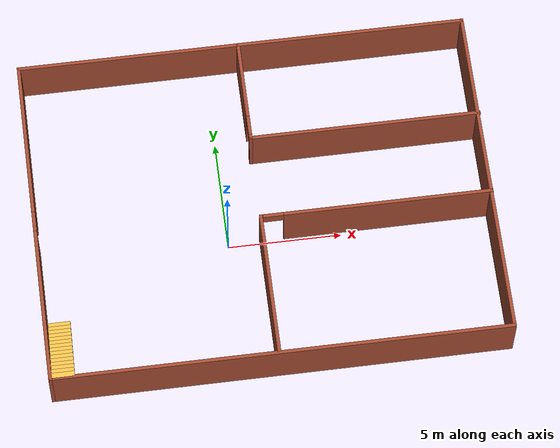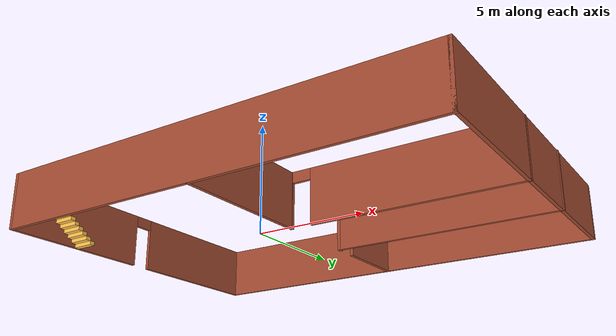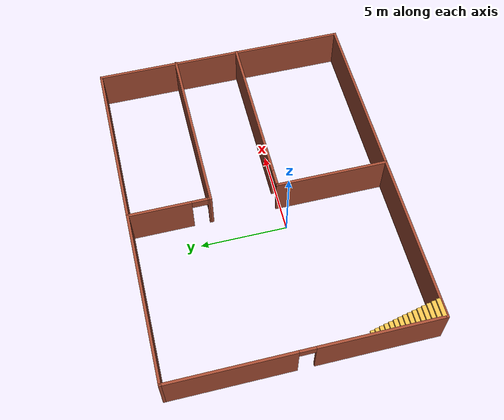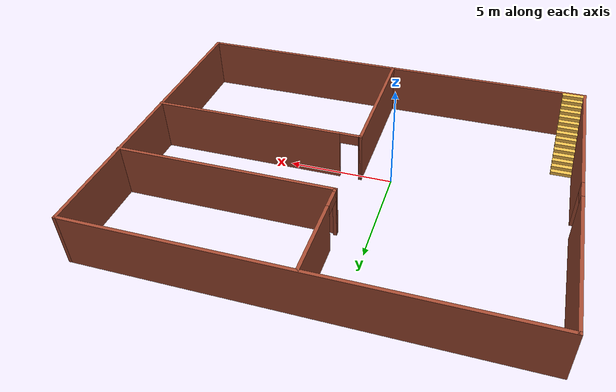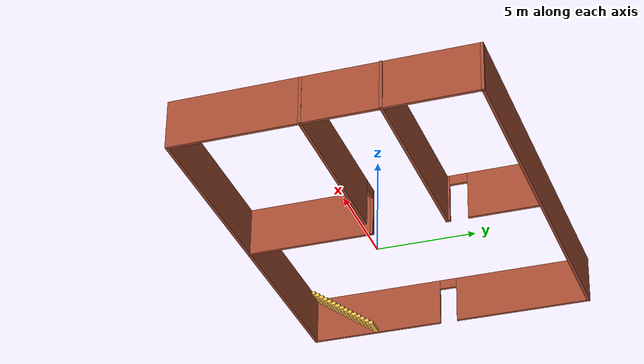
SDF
<?xml version='1.0'?>
<sdf version='1.6'>
  <model name='my_building'>
    <pose frame=''>1.64667 1.23667 0 0 -0 0</pose>
    <link name='Stairs_0'>
      <visual name='Stairs_0_Visual_0'>
        <pose frame=''>-9.39287 -4.03181 0.083333 0 -0 0</pose>
        <geometry>
          <box>
            <size>1 0.233333 0.166667</size>
          </box>
        </geometry>
        <material>
          <script>
            <uri>file://media/materials/scripts/gazebo.material</uri>
            <name>Gazebo/Grey</name>
          </script>
          <ambient>1 0.764706 0.305882 1</ambient>
        </material>
      </visual>
      <collision name='Stairs_0_Collision_0'>
        <geometry>
          <box>
            <size>1 0.233333 0.166667</size>
          </box>
        </geometry>
        <pose frame=''>-9.39287 -4.03181 0.083333 0 -0 0</pose>
      </collision>
      <visual name='Stairs_0_Visual_1'>
        <pose frame=''>-9.39287 -4.26514 0.25 0 -0 0</pose>
        <geometry>
          <box>
            <size>1 0.233333 0.166667</size>
          </box>
        </geometry>
        <material>
          <script>
            <uri>file://media/materials/scripts/gazebo.material</uri>
            <name>Gazebo/Grey</name>
          </script>
          <ambient>1 0.764706 0.305882 1</ambient>
        </material>
      </visual>
      <collision name='Stairs_0_Collision_1'>
        <geometry>
          <box>
            <size>1 0.233333 0.166667</size>
          </box>
        </geometry>
        <pose frame=''>-9.39287 -4.26514 0.25 0 -0 0</pose>
      </collision>
      <visual name='Stairs_0_Visual_2'>
        <pose frame=''>-9.39287 -4.49847 0.416667 0 -0 0</pose>
        <geometry>
          <box>
            <size>1 0.233333 0.166667</size>
          </box>
        </geometry>
        <material>
          <script>
            <uri>file://media/materials/scripts/gazebo.material</uri>
            <name>Gazebo/Grey</name>
          </script>
          <ambient>1 0.764706 0.305882 1</ambient>
        </material>
      </visual>
      <collision name='Stairs_0_Collision_2'>
        <geometry>
          <box>
            <size>1 0.233333 0.166667</size>
          </box>
        </geometry>
        <pose frame=''>-9.39287 -4.49847 0.416667 0 -0 0</pose>
      </collision>
      <visual name='Stairs_0_Visual_3'>
        <pose frame=''>-9.39287 -4.73181 0.583333 0 -0 0</pose>
        <geometry>
          <box>
            <size>1 0.233333 0.166667</size>
          </box>
        </geometry>
        <material>
          <script>
            <uri>file://media/materials/scripts/gazebo.material</uri>
            <name>Gazebo/Grey</name>
          </script>
          <ambient>1 0.764706 0.305882 1</ambient>
        </material>
      </visual>
      <collision name='Stairs_0_Collision_3'>
        <geometry>
          <box>
            <size>1 0.233333 0.166667</size>
          </box>
        </geometry>
        <pose frame=''>-9.39287 -4.73181 0.583333 0 -0 0</pose>
      </collision>
      <visual name='Stairs_0_Visual_4'>
        <pose frame=''>-9.39287 -4.96514 0.75 0 -0 0</pose>
        <geometry>
          <box>
            <size>1 0.233333 0.166667</size>
          </box>
        </geometry>
        <material>
          <script>
            <uri>file://media/materials/scripts/gazebo.material</uri>
            <name>Gazebo/Grey</name>
          </script>
          <ambient>1 0.764706 0.305882 1</ambient>
        </material>
      </visual>
      <collision name='Stairs_0_Collision_4'>
        <geometry>
          <box>
            <size>1 0.233333 0.166667</size>
          </box>
        </geometry>
        <pose frame=''>-9.39287 -4.96514 0.75 0 -0 0</pose>
      </collision>
      <visual name='Stairs_0_Visual_5'>
        <pose frame=''>-9.39287 -5.19847 0.916667 0 -0 0</pose>
        <geometry>
          <box>
            <size>1 0.233333 0.166667</size>
          </box>
        </geometry>
        <material>
          <script>
            <uri>file://media/materials/scripts/gazebo.material</uri>
            <name>Gazebo/Grey</name>
          </script>
          <ambient>1 0.764706 0.305882 1</ambient>
        </material>
      </visual>
      <collision name='Stairs_0_Collision_5'>
        <geometry>
          <box>
            <size>1 0.233333 0.166667</size>
          </box>
        </geometry>
        <pose frame=''>-9.39287 -5.19847 0.916667 0 -0 0</pose>
      </collision>
      <visual name='Stairs_0_Visual_6'>
        <pose frame=''>-9.39287 -5.43181 1.08333 0 -0 0</pose>
        <geometry>
          <box>
            <size>1 0.233333 0.166667</size>
          </box>
        </geometry>
        <material>
          <script>
            <uri>file://media/materials/scripts/gazebo.material</uri>
            <name>Gazebo/Grey</name>
          </script>
          <ambient>1 0.764706 0.305882 1</ambient>
        </material>
      </visual>
      <collision name='Stairs_0_Collision_6'>
        <geometry>
          <box>
            <size>1 0.233333 0.166667</size>
          </box>
        </geometry>
        <pose frame=''>-9.39287 -5.43181 1.08333 0 -0 0</pose>
      </collision>
      <visual name='Stairs_0_Visual_7'>
        <pose frame=''>-9.39287 -5.66514 1.25 0 -0 0</pose>
        <geometry>
          <box>
            <size>1 0.233333 0.166667</size>
          </box>
        </geometry>
        <material>
          <script>
            <uri>file://media/materials/scripts/gazebo.material</uri>
            <name>Gazebo/Grey</name>
          </script>
          <ambient>1 0.764706 0.305882 1</ambient>
        </material>
      </visual>
      <collision name='Stairs_0_Collision_7'>
        <geometry>
          <box>
            <size>1 0.233333 0.166667</size>
          </box>
        </geometry>
        <pose frame=''>-9.39287 -5.66514 1.25 0 -0 0</pose>
      </collision>
      <visual name='Stairs_0_Visual_8'>
        <pose frame=''>-9.39287 -5.89848 1.41667 0 -0 0</pose>
        <geometry>
          <box>
            <size>1 0.233333 0.166667</size>
          </box>
        </geometry>
        <material>
          <script>
            <uri>file://media/materials/scripts/gazebo.material</uri>
            <name>Gazebo/Grey</name>
          </script>
          <ambient>1 0.764706 0.305882 1</ambient>
        </material>
      </visual>
      <collision name='Stairs_0_Collision_8'>
        <geometry>
          <box>
            <size>1 0.233333 0.166667</size>
          </box>
        </geometry>
        <pose frame=''>-9.39287 -5.89848 1.41667 0 -0 0</pose>
      </collision>
      <visual name='Stairs_0_Visual_9'>
        <pose frame=''>-9.39287 -6.13181 1.58333 0 -0 0</pose>
        <geometry>
          <box>
            <size>1 0.233333 0.166667</size>
          </box>
        </geometry>
        <material>
          <script>
            <uri>file://media/materials/scripts/gazebo.material</uri>
            <name>Gazebo/Grey</name>
          </script>
          <ambient>1 0.764706 0.305882 1</ambient>
        </material>
      </visual>
      <collision name='Stairs_0_Collision_9'>
        <geometry>
          <box>
            <size>1 0.233333 0.166667</size>
          </box>
        </geometry>
        <pose frame=''>-9.39287 -6.13181 1.58333 0 -0 0</pose>
      </collision>
      <visual name='Stairs_0_Visual_10'>
        <pose frame=''>-9.39287 -6.36514 1.75 0 -0 0</pose>
        <geometry>
          <box>
            <size>1 0.233333 0.166667</size>
          </box>
        </geometry>
        <material>
          <script>
            <uri>file://media/materials/scripts/gazebo.material</uri>
            <name>Gazebo/Grey</name>
          </script>
          <ambient>1 0.764706 0.305882 1</ambient>
        </material>
      </visual>
      <collision name='Stairs_0_Collision_10'>
        <geometry>
          <box>
            <size>1 0.233333 0.166667</size>
          </box>
        </geometry>
        <pose frame=''>-9.39287 -6.36514 1.75 0 -0 0</pose>
      </collision>
      <visual name='Stairs_0_Visual_11'>
        <pose frame=''>-9.39287 -6.59847 1.91667 0 -0 0</pose>
        <geometry>
          <box>
            <size>1 0.233333 0.166667</size>
          </box>
        </geometry>
        <material>
          <script>
            <uri>file://media/materials/scripts/gazebo.material</uri>
            <name>Gazebo/Grey</name>
          </script>
          <ambient>1 0.764706 0.305882 1</ambient>
        </material>
      </visual>
      <collision name='Stairs_0_Collision_11'>
        <geometry>
          <box>
            <size>1 0.233333 0.166667</size>
          </box>
        </geometry>
        <pose frame=''>-9.39287 -6.59847 1.91667 0 -0 0</pose>
      </collision>
      <visual name='Stairs_0_Visual_12'>
        <pose frame=''>-9.39287 -6.83181 2.08333 0 -0 0</pose>
        <geometry>
          <box>
            <size>1 0.233333 0.166667</size>
          </box>
        </geometry>
        <material>
          <script>
            <uri>file://media/materials/scripts/gazebo.material</uri>
            <name>Gazebo/Grey</name>
          </script>
          <ambient>1 0.764706 0.305882 1</ambient>
        </material>
      </visual>
      <collision name='Stairs_0_Collision_12'>
        <geometry>
          <box>
            <size>1 0.233333 0.166667</size>
          </box>
        </geometry>
        <pose frame=''>-9.39287 -6.83181 2.08333 0 -0 0</pose>
      </collision>
      <visual name='Stairs_0_Visual_13'>
        <pose frame=''>-9.39287 -7.06514 2.25 0 -0 0</pose>
        <geometry>
          <box>
            <size>1 0.233333 0.166667</size>
          </box>
        </geometry>
        <material>
          <script>
            <uri>file://media/materials/scripts/gazebo.material</uri>
            <name>Gazebo/Grey</name>
          </script>
          <ambient>1 0.764706 0.305882 1</ambient>
        </material>
      </visual>
      <collision name='Stairs_0_Collision_13'>
        <geometry>
          <box>
            <size>1 0.233333 0.166667</size>
          </box>
        </geometry>
        <pose frame=''>-9.39287 -7.06514 2.25 0 -0 0</pose>
      </collision>
      <visual name='Stairs_0_Visual_14'>
        <pose frame=''>-9.39287 -7.29847 2.41667 0 -0 0</pose>
        <geometry>
          <box>
            <size>1 0.233333 0.166667</size>
          </box>
        </geometry>
        <material>
          <script>
            <uri>file://media/materials/scripts/gazebo.material</uri>
            <name>Gazebo/Grey</name>
          </script>
          <ambient>1 0.764706 0.305882 1</ambient>
        </material>
      </visual>
      <collision name='Stairs_0_Collision_14'>
        <geometry>
          <box>
            <size>1 0.233333 0.166667</size>
          </box>
        </geometry>
        <pose frame=''>-9.39287 -7.29847 2.41667 0 -0 0</pose>
      </collision>
    </link>
    <link name='Wall_10'>
      <collision name='Wall_10_Collision'>
        <geometry>
          <box>
            <size>6.5 0.15 2.5</size>
          </box>
        </geometry>
        <pose frame=''>0 0 1.25 0 -0 0</pose>
      </collision>
      <visual name='Wall_10_Visual'>
        <pose frame=''>0 0 1.25 0 -0 0</pose>
        <geometry>
          <box>
            <size>6.5 0.15 2.5</size>
          </box>
        </geometry>
        <material>
          <script>
            <uri>file://media/materials/scripts/gazebo.material</uri>
            <name>Gazebo/Bricks</name>
          </script>
          <ambient>1 1 1 1</ambient>
        </material>
      </visual>
      <pose frame=''>-0.184819 -4.2104 0 0 -0 1.5708</pose>
    </link>
    <link name='Wall_11'>
      <pose frame=''>4.86518 -1.0354 0 0 -0 0</pose>
      <visual name='Wall_11_Visual_0'>
        <pose frame=''>-5.04163 0 1.25 0 -0 0</pose>
        <geometry>
          <box>
            <size>0.166741 0.15 2.5</size>
          </box>
        </geometry>
        <material>
          <script>
            <uri>file://media/materials/scripts/gazebo.material</uri>
            <name>Gazebo/Bricks</name>
          </script>
          <ambient>1 1 1 1</ambient>
        </material>
      </visual>
      <collision name='Wall_11_Collision_0'>
        <geometry>
          <box>
            <size>0.166741 0.15 2.5</size>
          </box>
        </geometry>
        <pose frame=''>-5.04163 0 1.25 0 -0 0</pose>
      </collision>
      <visual name='Wall_11_Visual_1'>
        <pose frame=''>0.53337 0 1.25 0 -0 0</pose>
        <geometry>
          <box>
            <size>9.18326 0.15 2.5</size>
          </box>
        </geometry>
        <material>
          <script>
            <uri>file://media/materials/scripts/gazebo.material</uri>
            <name>Gazebo/Bricks</name>
          </script>
          <ambient>1 1 1 1</ambient>
        </material>
      </visual>
      <collision name='Wall_11_Collision_1'>
        <geometry>
          <box>
            <size>9.18326 0.15 2.5</size>
          </box>
        </geometry>
        <pose frame=''>0.53337 0 1.25 0 -0 0</pose>
      </collision>
      <visual name='Wall_11_Visual_2'>
        <pose frame=''>-4.50826 0 2.25 0 -0 0</pose>
        <geometry>
          <box>
            <size>0.9 0.15 0.5</size>
          </box>
        </geometry>
        <material>
          <script>
            <uri>file://media/materials/scripts/gazebo.material</uri>
            <name>Gazebo/Bricks</name>
          </script>
          <ambient>1 1 1 1</ambient>
        </material>
      </visual>
      <collision name='Wall_11_Collision_2'>
        <geometry>
          <box>
            <size>0.9 0.15 0.5</size>
          </box>
        </geometry>
        <pose frame=''>-4.50826 0 2.25 0 -0 0</pose>
      </collision>
    </link>
    <link name='Wall_13'>
      <collision name='Wall_13_Collision'>
        <geometry>
          <box>
            <size>10.25 0.15 2.5</size>
          </box>
        </geometry>
        <pose frame=''>0 0 1.25 0 -0 0</pose>
      </collision>
      <visual name='Wall_13_Visual'>
        <pose frame=''>0 0 1.25 0 -0 0</pose>
        <geometry>
          <box>
            <size>10.25 0.15 2.5</size>
          </box>
        </geometry>
        <material>
          <script>
            <uri>file://media/materials/scripts/gazebo.material</uri>
            <name>Gazebo/Bricks</name>
          </script>
          <ambient>1 1 1 1</ambient>
        </material>
      </visual>
      <pose frame=''>4.89666 2.78126 0 0 -0 3.14159</pose>
    </link>
    <link name='Wall_14'>
      <pose frame=''>-0.153335 5.08126 0 0 -0 1.5708</pose>
      <visual name='Wall_14_Visual_0'>
        <pose frame=''>-2.25468 0 1.25 0 -0 0</pose>
        <geometry>
          <box>
            <size>0.24065 0.15 2.5</size>
          </box>
        </geometry>
        <material>
          <script>
            <uri>file://media/materials/scripts/gazebo.material</uri>
            <name>Gazebo/Bricks</name>
          </script>
          <ambient>1 1 1 1</ambient>
        </material>
      </visual>
      <collision name='Wall_14_Collision_0'>
        <geometry>
          <box>
            <size>0.24065 0.15 2.5</size>
          </box>
        </geometry>
        <pose frame=''>-2.25468 0 1.25 0 -0 0</pose>
      </collision>
      <visual name='Wall_14_Visual_1'>
        <pose frame=''>0.570325 0 1.25 0 -0 0</pose>
        <geometry>
          <box>
            <size>3.60935 0.15 2.5</size>
          </box>
        </geometry>
        <material>
          <script>
            <uri>file://media/materials/scripts/gazebo.material</uri>
            <name>Gazebo/Bricks</name>
          </script>
          <ambient>1 1 1 1</ambient>
        </material>
      </visual>
      <collision name='Wall_14_Collision_1'>
        <geometry>
          <box>
            <size>3.60935 0.15 2.5</size>
          </box>
        </geometry>
        <pose frame=''>0.570325 0 1.25 0 -0 0</pose>
      </collision>
      <visual name='Wall_14_Visual_2'>
        <pose frame=''>-1.68435 0 2.25 0 -0 0</pose>
        <geometry>
          <box>
            <size>0.9 0.15 0.5</size>
          </box>
        </geometry>
        <material>
          <script>
            <uri>file://media/materials/scripts/gazebo.material</uri>
            <name>Gazebo/Bricks</name>
          </script>
          <ambient>1 1 1 1</ambient>
        </material>
      </visual>
      <collision name='Wall_14_Collision_2'>
        <geometry>
          <box>
            <size>0.9 0.15 0.5</size>
          </box>
        </geometry>
        <pose frame=''>-1.68435 0 2.25 0 -0 0</pose>
      </collision>
    </link>
    <link name='Wall_2'>
      <collision name='Wall_2_Collision'>
        <geometry>
          <box>
            <size>20 0.15 2.5</size>
          </box>
        </geometry>
        <pose frame=''>0 0 1.25 0 -0 0</pose>
      </collision>
      <visual name='Wall_2_Visual'>
        <pose frame=''>0 0 1.25 0 -0 0</pose>
        <geometry>
          <box>
            <size>20 0.15 2.5</size>
          </box>
        </geometry>
        <material>
          <script>
            <uri>file://media/materials/scripts/gazebo.material</uri>
            <name>Gazebo/Bricks</name>
          </script>
          <ambient>1 1 1 1</ambient>
        </material>
      </visual>
      <pose frame=''>-0.021664 -7.425 0 0 -0 0</pose>
    </link>
    <link name='Wall_3'>
      <collision name='Wall_3_Collision'>
        <geometry>
          <box>
            <size>15 0.15 2.5</size>
          </box>
        </geometry>
        <pose frame=''>0 0 1.25 0 -0 0</pose>
      </collision>
      <visual name='Wall_3_Visual'>
        <pose frame=''>0 0 1.25 0 -0 0</pose>
        <geometry>
          <box>
            <size>15 0.15 2.5</size>
          </box>
        </geometry>
        <material>
          <script>
            <uri>file://media/materials/scripts/gazebo.material</uri>
            <name>Gazebo/Bricks</name>
          </script>
          <ambient>1 1 1 1</ambient>
        </material>
      </visual>
      <pose frame=''>9.90334 0 0 0 -0 1.5708</pose>
    </link>
    <link name='Wall_4'>
      <collision name='Wall_4_Collision'>
        <geometry>
          <box>
            <size>20 0.15 2.5</size>
          </box>
        </geometry>
        <pose frame=''>0 0 1.25 0 -0 0</pose>
      </collision>
      <visual name='Wall_4_Visual'>
        <pose frame=''>0 0 1.25 0 -0 0</pose>
        <geometry>
          <box>
            <size>20 0.15 2.5</size>
          </box>
        </geometry>
        <material>
          <script>
            <uri>file://media/materials/scripts/gazebo.material</uri>
            <name>Gazebo/Bricks</name>
          </script>
          <ambient>1 1 1 1</ambient>
        </material>
      </visual>
      <pose frame=''>-0.021664 7.425 0 0 -0 3.14159</pose>
    </link>
    <link name='Wall_8'>
      <pose frame=''>-9.94666 0 0 0 0 -1.5708</pose>
      <visual name='Wall_8_Visual_0'>
        <pose frame=''>-3.95046 0 1.25 0 -0 0</pose>
        <geometry>
          <box>
            <size>7.09907 0.15 2.5</size>
          </box>
        </geometry>
        <material>
          <script>
            <uri>file://media/materials/scripts/gazebo.material</uri>
            <name>Gazebo/Bricks</name>
          </script>
          <ambient>1 1 1 1</ambient>
        </material>
      </visual>
      <collision name='Wall_8_Collision_0'>
        <geometry>
          <box>
            <size>7.09907 0.15 2.5</size>
          </box>
        </geometry>
        <pose frame=''>-3.95046 0 1.25 0 -0 0</pose>
      </collision>
      <visual name='Wall_8_Visual_1'>
        <pose frame=''>3.99954 0 1.25 0 -0 0</pose>
        <geometry>
          <box>
            <size>7.00093 0.15 2.5</size>
          </box>
        </geometry>
        <material>
          <script>
            <uri>file://media/materials/scripts/gazebo.material</uri>
            <name>Gazebo/Bricks</name>
          </script>
          <ambient>1 1 1 1</ambient>
        </material>
      </visual>
      <collision name='Wall_8_Collision_1'>
        <geometry>
          <box>
            <size>7.00093 0.15 2.5</size>
          </box>
        </geometry>
        <pose frame=''>3.99954 0 1.25 0 -0 0</pose>
      </collision>
      <visual name='Wall_8_Visual_2'>
        <pose frame=''>0.049074 0 2.25 0 -0 0</pose>
        <geometry>
          <box>
            <size>0.9 0.15 0.5</size>
          </box>
        </geometry>
        <material>
          <script>
            <uri>file://media/materials/scripts/gazebo.material</uri>
            <name>Gazebo/Bricks</name>
          </script>
          <ambient>1 1 1 1</ambient>
        </material>
      </visual>
      <collision name='Wall_8_Collision_2'>
        <geometry>
          <box>
            <size>0.9 0.15 0.5</size>
          </box>
        </geometry>
        <pose frame=''>0.049074 0 2.25 0 -0 0</pose>
      </collision>
    </link>
    <static>1</static>
  </model>
</sdf>
